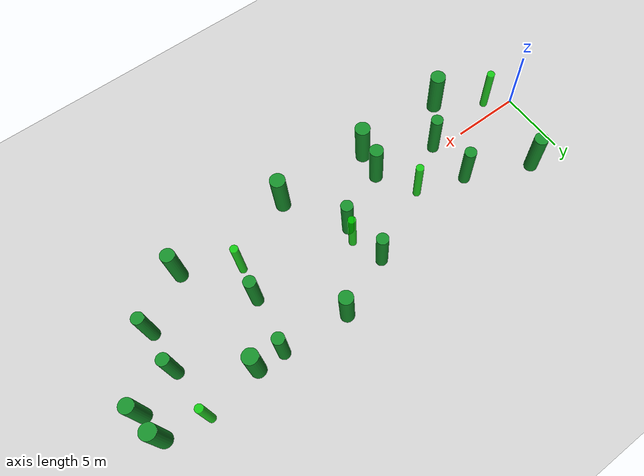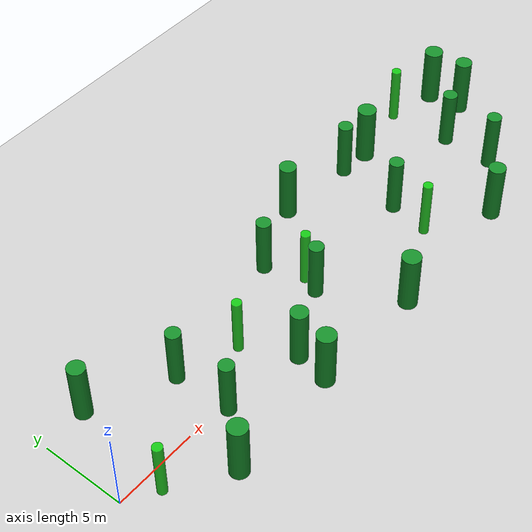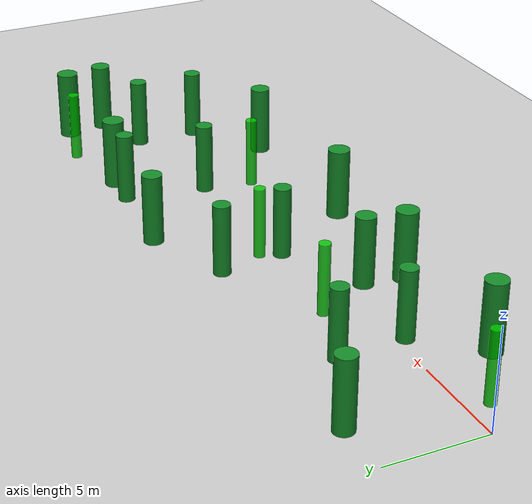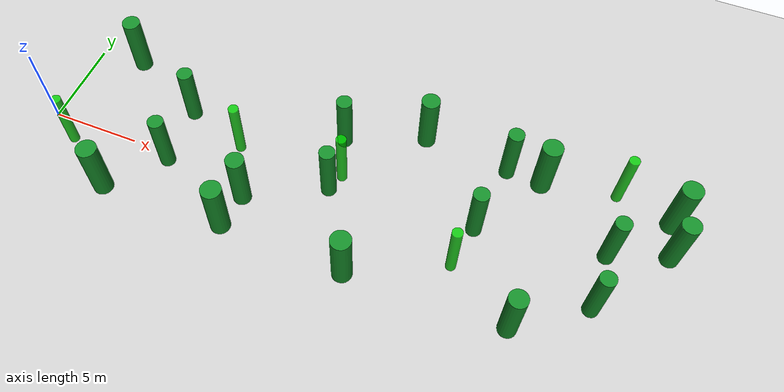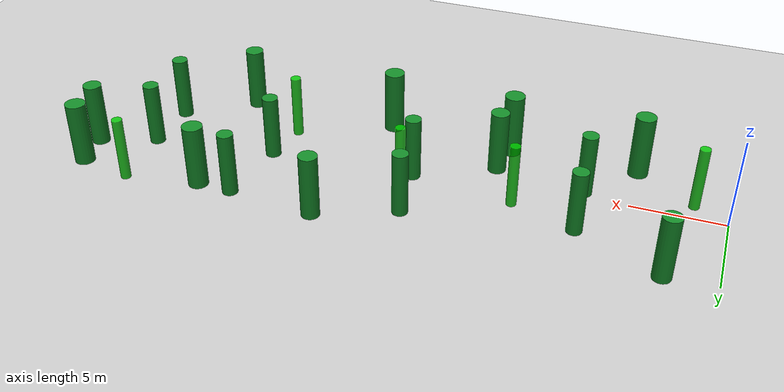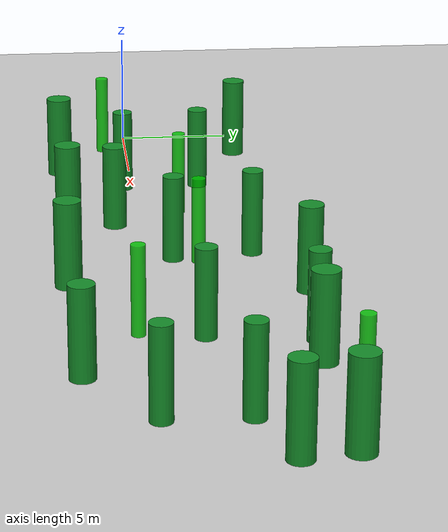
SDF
<sdf version="1.6">
 <world name="long_cylinder_forest_v2">
  <include><uri>model://sun</uri></include>
  <include><uri>model://ground_plane</uri></include>
  <model name="long_forest_cylinder_08">
   <static>true</static>
   <pose>7.280 3.000 1.800 0 0 0</pose>
   <link name="link">
    <collision name="collision">
     <geometry><cylinder><radius>0.430</radius><length>3.600</length></cylinder></geometry>
    </collision>
    <visual name="visual">
     <geometry><cylinder><radius>0.430</radius><length>3.600</length></cylinder></geometry>
     <material><ambient>0.08 0.55 0.16 0.92</ambient><diffuse>0.08 0.55 0.16 0.92</diffuse></material>
    </visual>
   </link>
  </model>
  <model name="long_forest_cylinder_09">
   <static>true</static>
   <pose>7.420 -0.400 1.800 0 0 0</pose>
   <link name="link">
    <collision name="collision">
     <geometry><cylinder><radius>0.430</radius><length>3.600</length></cylinder></geometry>
    </collision>
    <visual name="visual">
     <geometry><cylinder><radius>0.430</radius><length>3.600</length></cylinder></geometry>
     <material><ambient>0.08 0.55 0.16 0.92</ambient><diffuse>0.08 0.55 0.16 0.92</diffuse></material>
    </visual>
   </link>
  </model>
  <model name="long_forest_cylinder_10">
   <static>true</static>
   <pose>16.030 4.450 1.800 0 0 0</pose>
   <link name="link">
    <collision name="collision">
     <geometry><cylinder><radius>0.430</radius><length>3.600</length></cylinder></geometry>
    </collision>
    <visual name="visual">
     <geometry><cylinder><radius>0.430</radius><length>3.600</length></cylinder></geometry>
     <material><ambient>0.08 0.55 0.16 0.92</ambient><diffuse>0.08 0.55 0.16 0.92</diffuse></material>
    </visual>
   </link>
  </model>
  <model name="long_forest_cylinder_11">
   <static>true</static>
   <pose>16.440 1.150 1.800 0 0 0</pose>
   <link name="link">
    <collision name="collision">
     <geometry><cylinder><radius>0.430</radius><length>3.600</length></cylinder></geometry>
    </collision>
    <visual name="visual">
     <geometry><cylinder><radius>0.430</radius><length>3.600</length></cylinder></geometry>
     <material><ambient>0.08 0.55 0.16 0.92</ambient><diffuse>0.08 0.55 0.16 0.92</diffuse></material>
    </visual>
   </link>
  </model>
  <model name="long_forest_cylinder_12">
   <static>true</static>
   <pose>25.060 5.800 1.800 0 0 0</pose>
   <link name="link">
    <collision name="collision">
     <geometry><cylinder><radius>0.430</radius><length>3.600</length></cylinder></geometry>
    </collision>
    <visual name="visual">
     <geometry><cylinder><radius>0.430</radius><length>3.600</length></cylinder></geometry>
     <material><ambient>0.08 0.55 0.16 0.92</ambient><diffuse>0.08 0.55 0.16 0.92</diffuse></material>
    </visual>
   </link>
  </model>
  <model name="long_forest_cylinder_13">
   <static>true</static>
   <pose>24.440 1.710 1.800 0 0 0</pose>
   <link name="link">
    <collision name="collision">
     <geometry><cylinder><radius>0.430</radius><length>3.600</length></cylinder></geometry>
    </collision>
    <visual name="visual">
     <geometry><cylinder><radius>0.430</radius><length>3.600</length></cylinder></geometry>
     <material><ambient>0.08 0.55 0.16 0.92</ambient><diffuse>0.08 0.55 0.16 0.92</diffuse></material>
    </visual>
   </link>
  </model>
  <model name="long_forest_cylinder_14">
   <static>true</static>
   <pose>31.230 2.690 1.800 0 0 0</pose>
   <link name="link">
    <collision name="collision">
     <geometry><cylinder><radius>0.430</radius><length>3.600</length></cylinder></geometry>
    </collision>
    <visual name="visual">
     <geometry><cylinder><radius>0.430</radius><length>3.600</length></cylinder></geometry>
     <material><ambient>0.08 0.55 0.16 0.92</ambient><diffuse>0.08 0.55 0.16 0.92</diffuse></material>
    </visual>
   </link>
  </model>
  <model name="long_forest_cylinder_15">
   <static>true</static>
   <pose>31.160 -0.450 1.800 0 0 0</pose>
   <link name="link">
    <collision name="collision">
     <geometry><cylinder><radius>0.430</radius><length>3.600</length></cylinder></geometry>
    </collision>
    <visual name="visual">
     <geometry><cylinder><radius>0.430</radius><length>3.600</length></cylinder></geometry>
     <material><ambient>0.08 0.55 0.16 0.92</ambient><diffuse>0.08 0.55 0.16 0.92</diffuse></material>
    </visual>
   </link>
  </model>
  <model name="long_forest_cylinder_19">
   <static>true</static>
   <pose>2.690 5.150 1.800 0 0 0</pose>
   <link name="link">
    <collision name="collision">
     <geometry><cylinder><radius>0.500</radius><length>3.600</length></cylinder></geometry>
    </collision>
    <visual name="visual">
     <geometry><cylinder><radius>0.500</radius><length>3.600</length></cylinder></geometry>
     <material><ambient>0.08 0.55 0.16 0.92</ambient><diffuse>0.08 0.55 0.16 0.92</diffuse></material>
    </visual>
   </link>
  </model>
  <model name="long_forest_cylinder_20">
   <static>true</static>
   <pose>12.310 -1.020 1.800 0 0 0</pose>
   <link name="link">
    <collision name="collision">
     <geometry><cylinder><radius>0.500</radius><length>3.600</length></cylinder></geometry>
    </collision>
    <visual name="visual">
     <geometry><cylinder><radius>0.500</radius><length>3.600</length></cylinder></geometry>
     <material><ambient>0.08 0.55 0.16 0.92</ambient><diffuse>0.08 0.55 0.16 0.92</diffuse></material>
    </visual>
   </link>
  </model>
  <model name="long_forest_cylinder_21">
   <static>true</static>
   <pose>20.270 6.210 1.800 0 0 0</pose>
   <link name="link">
    <collision name="collision">
     <geometry><cylinder><radius>0.500</radius><length>3.600</length></cylinder></geometry>
    </collision>
    <visual name="visual">
     <geometry><cylinder><radius>0.500</radius><length>3.600</length></cylinder></geometry>
     <material><ambient>0.08 0.55 0.16 0.92</ambient><diffuse>0.08 0.55 0.16 0.92</diffuse></material>
    </visual>
   </link>
  </model>
  <model name="long_forest_cylinder_22">
   <static>true</static>
   <pose>27.610 -2.950 1.800 0 0 0</pose>
   <link name="link">
    <collision name="collision">
     <geometry><cylinder><radius>0.500</radius><length>3.600</length></cylinder></geometry>
    </collision>
    <visual name="visual">
     <geometry><cylinder><radius>0.500</radius><length>3.600</length></cylinder></geometry>
     <material><ambient>0.08 0.55 0.16 0.92</ambient><diffuse>0.08 0.55 0.16 0.92</diffuse></material>
    </visual>
   </link>
  </model>
  <model name="long_forest_cylinder_23">
   <static>true</static>
   <pose>34.270 3.780 1.800 0 0 0</pose>
   <link name="link">
    <collision name="collision">
     <geometry><cylinder><radius>0.500</radius><length>3.600</length></cylinder></geometry>
    </collision>
    <visual name="visual">
     <geometry><cylinder><radius>0.500</radius><length>3.600</length></cylinder></geometry>
     <material><ambient>0.08 0.55 0.16 0.92</ambient><diffuse>0.08 0.55 0.16 0.92</diffuse></material>
    </visual>
   </link>
  </model>
  <model name="long_forest_cylinder_31">
   <static>true</static>
   <pose>5.000 -3.200 1.800 0 0 0</pose>
   <link name="link">
    <collision name="collision">
     <geometry><cylinder><radius>0.550</radius><length>3.600</length></cylinder></geometry>
    </collision>
    <visual name="visual">
     <geometry><cylinder><radius>0.550</radius><length>3.600</length></cylinder></geometry>
     <material><ambient>0.08 0.55 0.16 0.92</ambient><diffuse>0.08 0.55 0.16 0.92</diffuse></material>
    </visual>
   </link>
  </model>
  <model name="long_forest_cylinder_32">
   <static>true</static>
   <pose>12.000 -3.000 1.800 0 0 0</pose>
   <link name="link">
    <collision name="collision">
     <geometry><cylinder><radius>0.550</radius><length>3.600</length></cylinder></geometry>
    </collision>
    <visual name="visual">
     <geometry><cylinder><radius>0.550</radius><length>3.600</length></cylinder></geometry>
     <material><ambient>0.08 0.55 0.16 0.92</ambient><diffuse>0.08 0.55 0.16 0.92</diffuse></material>
    </visual>
   </link>
  </model>
  <model name="long_forest_cylinder_33">
   <static>true</static>
   <pose>19.000 -3.200 1.800 0 0 0</pose>
   <link name="link">
    <collision name="collision">
     <geometry><cylinder><radius>0.550</radius><length>3.600</length></cylinder></geometry>
    </collision>
    <visual name="visual">
     <geometry><cylinder><radius>0.550</radius><length>3.600</length></cylinder></geometry>
     <material><ambient>0.08 0.55 0.16 0.92</ambient><diffuse>0.08 0.55 0.16 0.92</diffuse></material>
    </visual>
   </link>
  </model>
  <model name="long_forest_cylinder_34">
   <static>true</static>
   <pose>27.000 5.700 1.800 0 0 0</pose>
   <link name="link">
    <collision name="collision">
     <geometry><cylinder><radius>0.550</radius><length>3.600</length></cylinder></geometry>
    </collision>
    <visual name="visual">
     <geometry><cylinder><radius>0.550</radius><length>3.600</length></cylinder></geometry>
     <material><ambient>0.08 0.55 0.16 0.92</ambient><diffuse>0.08 0.55 0.16 0.92</diffuse></material>
    </visual>
   </link>
  </model>
  <model name="long_forest_cylinder_35">
   <static>true</static>
   <pose>34.000 5.800 1.800 0 0 0</pose>
   <link name="link">
    <collision name="collision">
     <geometry><cylinder><radius>0.550</radius><length>3.600</length></cylinder></geometry>
    </collision>
    <visual name="visual">
     <geometry><cylinder><radius>0.550</radius><length>3.600</length></cylinder></geometry>
     <material><ambient>0.08 0.55 0.16 0.92</ambient><diffuse>0.08 0.55 0.16 0.92</diffuse></material>
    </visual>
   </link>
  </model>
  <model name="v2_spatial_late">
   <static>false</static>
   <pose>16.800 2.162 1.800 0 0 0</pose>
   <link name="link">
    <gravity>false</gravity>
    <inertial>
     <mass>1.0</mass>
     <inertia><ixx>0.1</ixx><ixy>0.0</ixy><ixz>0.0</ixz><iyy>0.1</iyy><iyz>0.0</iyz><izz>0.1</izz></inertia>
    </inertial>
    <collision name="collision">
     <geometry><cylinder><radius>0.280</radius><length>3.600</length></cylinder></geometry>
    </collision>
    <visual name="visual">
     <geometry><cylinder><radius>0.280</radius><length>3.600</length></cylinder></geometry>
     <material><ambient>0 0.8 0 0.85</ambient><diffuse>0 0.8 0 0.85</diffuse></material>
    </visual>
   </link>
  </model>
  <model name="v2_temporal_mid">
   <static>false</static>
   <pose>1.800 -1.080 1.800 0 0 0</pose>
   <link name="link">
    <gravity>false</gravity>
    <inertial>
     <mass>1.0</mass>
     <inertia><ixx>0.1</ixx><ixy>0.0</ixy><ixz>0.0</ixz><iyy>0.1</iyy><iyz>0.0</iyz><izz>0.1</izz></inertia>
    </inertial>
    <collision name="collision">
     <geometry><cylinder><radius>0.280</radius><length>3.600</length></cylinder></geometry>
    </collision>
    <visual name="visual">
     <geometry><cylinder><radius>0.280</radius><length>3.600</length></cylinder></geometry>
     <material><ambient>0 0.8 0 0.85</ambient><diffuse>0 0.8 0 0.85</diffuse></material>
    </visual>
   </link>
  </model>
  <model name="v2_temporal_late">
   <static>false</static>
   <pose>24.000 -0.752 1.800 0 0 0</pose>
   <link name="link">
    <gravity>false</gravity>
    <inertial>
     <mass>1.0</mass>
     <inertia><ixx>0.1</ixx><ixy>0.0</ixy><ixz>0.0</ixz><iyy>0.1</iyy><iyz>0.0</iyz><izz>0.1</izz></inertia>
    </inertial>
    <collision name="collision">
     <geometry><cylinder><radius>0.280</radius><length>3.600</length></cylinder></geometry>
    </collision>
    <visual name="visual">
     <geometry><cylinder><radius>0.280</radius><length>3.600</length></cylinder></geometry>
     <material><ambient>0 0.8 0 0.85</ambient><diffuse>0 0.8 0 0.85</diffuse></material>
    </visual>
   </link>
  </model>
  <model name="v2_mixed_mid">
   <static>false</static>
   <pose>10.800 1.849 1.800 0 0 0</pose>
   <link name="link">
    <gravity>false</gravity>
    <inertial>
     <mass>1.0</mass>
     <inertia><ixx>0.1</ixx><ixy>0.0</ixy><ixz>0.0</ixz><iyy>0.1</iyy><iyz>0.0</iyz><izz>0.1</izz></inertia>
    </inertial>
    <collision name="collision">
     <geometry><cylinder><radius>0.280</radius><length>3.600</length></cylinder></geometry>
    </collision>
    <visual name="visual">
     <geometry><cylinder><radius>0.280</radius><length>3.600</length></cylinder></geometry>
     <material><ambient>0 0.8 0 0.85</ambient><diffuse>0 0.8 0 0.85</diffuse></material>
    </visual>
   </link>
  </model>
  <model name="v2_background_low_1">
   <static>false</static>
   <pose>31.000 6.462 1.800 0 0 0</pose>
   <link name="link">
    <gravity>false</gravity>
    <inertial>
     <mass>1.0</mass>
     <inertia><ixx>0.1</ixx><ixy>0.0</ixy><ixz>0.0</ixz><iyy>0.1</iyy><iyz>0.0</iyz><izz>0.1</izz></inertia>
    </inertial>
    <collision name="collision">
     <geometry><cylinder><radius>0.280</radius><length>3.600</length></cylinder></geometry>
    </collision>
    <visual name="visual">
     <geometry><cylinder><radius>0.280</radius><length>3.600</length></cylinder></geometry>
     <material><ambient>0 0.8 0 0.85</ambient><diffuse>0 0.8 0 0.85</diffuse></material>
    </visual>
   </link>
  </model>
 </world>
</sdf>
